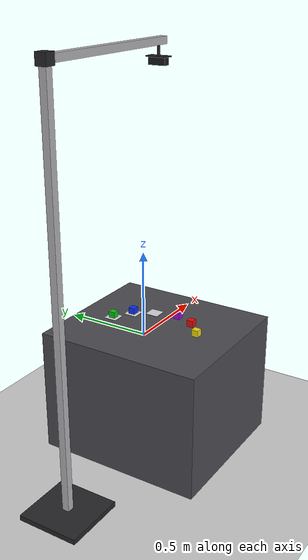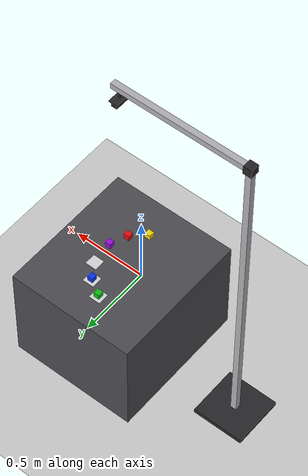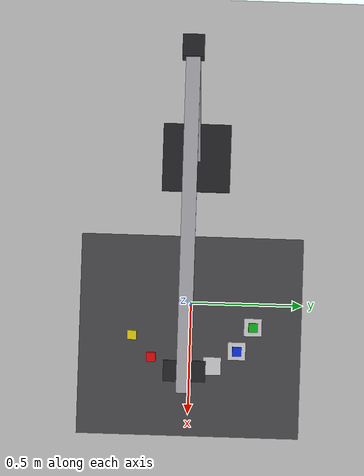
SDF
<?xml version="1.0" ?>
<sdf version="1.6">
  <world name="pick_place_world">
    <physics name="1ms" type="ignored">
      <max_step_size>0.001</max_step_size>
      <real_time_factor>1.0</real_time_factor>
    </physics>
    <plugin filename="ignition-gazebo-physics-system" name="gz::sim::systems::Physics"/>
    <plugin filename="ignition-gazebo-user-commands-system" name="gz::sim::systems::UserCommands"/>
    <plugin filename="ignition-gazebo-scene-broadcaster-system" name="gz::sim::systems::SceneBroadcaster"/>
    <!-- Bat buoc cho camera: khong co plugin nay thi sensor khong render va khong phat anh -->
    <plugin filename="ignition-gazebo-sensors-system" name="gz::sim::systems::Sensors">
      <render_engine>ogre2</render_engine>
    </plugin>

    <gui fullscreen="0">
      <camera name="user_camera">
        <pose>1.3 -0.9 0.9 0 0.45 2.55</pose>
      </camera>
    </gui>

    <!-- Tat bong do: bong cua canh tay tren khoi lam lech phan doan mau cua camera -->
    <light type="directional" name="sun">
      <cast_shadows>false</cast_shadows>
      <pose>0 0 10 0 0 0</pose>
      <diffuse>0.8 0.8 0.8 1</diffuse>
      <specular>0.2 0.2 0.2 1</specular>
      <direction>-0.5 0.1 -0.9</direction>
    </light>

    <model name="ground_plane">
      <static>true</static>
      <pose>0 0 -0.75 0 0 0</pose>
      <link name="link">
        <collision name="collision">
          <geometry><plane><normal>0 0 1</normal><size>20 20</size></plane></geometry>
        </collision>
        <visual name="visual">
          <geometry><plane><normal>0 0 1</normal><size>20 20</size></plane></geometry>
          <material>
            <ambient>0.8 0.8 0.8 1</ambient>
            <diffuse>0.8 0.8 0.8 1</diffuse>
          </material>
        </visual>
      </link>
    </model>

    <!-- Ban thao tac: 0.90 x 1.00 x 0.75 m, mat tren o z = 0 -->
    <model name="table">
      <static>true</static>
      <pose>0.15 0 -0.375 0 0 0</pose>
      <link name="link">
        <collision name="collision">
          <geometry><box><size>0.90 1.00 0.75</size></box></geometry>
        </collision>
        <visual name="visual">
          <geometry><box><size>0.90 1.00 0.75</size></box></geometry>
          <material>
            <ambient>0.30 0.30 0.32 1</ambient>
            <diffuse>0.30 0.30 0.32 1</diffuse>
          </material>
        </visual>
      </link>
    </model>

    <model name="overhead_camera">
      <static>true</static>
      <pose>0.15 0 1.5 0 1.5708 3.14159</pose>
      <link name="link">
        <visual name="visual">
          <geometry><box><size>0.04 0.10 0.04</size></box></geometry>
          <material>
            <ambient>0.1 0.1 0.1 1</ambient>
            <diffuse>0.1 0.1 0.1 1</diffuse>
          </material>
        </visual>
        <sensor name="overhead_camera" type="camera">
          <always_on>1</always_on>
          <update_rate>10</update_rate>
          <visualize>false</visualize>
          <topic>camera/image</topic>
          <camera>
            <horizontal_fov>0.70</horizontal_fov>
            <image>
              <width>640</width>
              <height>480</height>
              <format>R8G8B8</format>
            </image>
            <clip>
              <near>0.1</near>
              <far>5.0</far>
            </clip>
          </camera>
        </sensor>
      </link>
    </model>

    <model name="camera_stand">
      <static>true</static>
      <pose>0 0 0 0 0 0</pose>
      <link name="link">
        <!-- De: tam thep 0.36 x 0.36 x 0.03 tren san (z = -0.75) -->
        <collision name="base_collision">
          <pose>-0.75 0 -0.735 0 0 0</pose>
          <geometry><box><size>0.36 0.36 0.03</size></box></geometry>
        </collision>
        <visual name="base_visual">
          <pose>-0.75 0 -0.735 0 0 0</pose>
          <geometry><box><size>0.36 0.36 0.03</size></box></geometry>
          <material>
            <ambient>0.15 0.15 0.16 1</ambient>
            <diffuse>0.15 0.15 0.16 1</diffuse>
          </material>
        </visual>
        <!-- Cot dung: z = -0.72 .. 1.62 -->
        <collision name="pole_collision">
          <pose>-0.75 0 0.45 0 0 0</pose>
          <geometry><box><size>0.04 0.04 2.34</size></box></geometry>
        </collision>
        <visual name="pole_visual">
          <pose>-0.75 0 0.45 0 0 0</pose>
          <geometry><box><size>0.04 0.04 2.34</size></box></geometry>
          <material>
            <ambient>0.70 0.70 0.72 1</ambient>
            <diffuse>0.70 0.70 0.72 1</diffuse>
            <specular>0.5 0.5 0.5 1</specular>
          </material>
        </visual>
        <!-- Khop goc noi cot dung va tay ngang -->
        <visual name="corner_visual">
          <pose>-0.75 0 1.60 0 0 0</pose>
          <geometry><box><size>0.06 0.06 0.06</size></box></geometry>
          <material>
            <ambient>0.15 0.15 0.16 1</ambient>
            <diffuse>0.15 0.15 0.16 1</diffuse>
          </material>
        </visual>
        <!-- Tay ngang: x = -0.75 .. 0.20, z = 1.58 .. 1.62 -->
        <visual name="arm_visual">
          <pose>-0.275 0 1.60 0 0 0</pose>
          <geometry><box><size>0.95 0.04 0.04</size></box></geometry>
          <material>
            <ambient>0.70 0.70 0.72 1</ambient>
            <diffuse>0.70 0.70 0.72 1</diffuse>
            <specular>0.5 0.5 0.5 1</specular>
          </material>
        </visual>
        <!-- Thanh treo tu tay ngang xuong mat tren camera (z = 1.52 .. 1.58) -->
        <visual name="hanger_visual">
          <pose>0.15 0 1.55 0 0 0</pose>
          <geometry><cylinder><radius>0.008</radius><length>0.06</length></cylinder></geometry>
          <material>
            <ambient>0.15 0.15 0.16 1</ambient>
            <diffuse>0.15 0.15 0.16 1</diffuse>
          </material>
        </visual>
        <!-- Tam kep om mat tren camera -->
        <visual name="clamp_visual">
          <pose>0.15 0 1.523 0 0 0</pose>
          <geometry><box><size>0.06 0.12 0.006</size></box></geometry>
          <material>
            <ambient>0.15 0.15 0.16 1</ambient>
            <diffuse>0.15 0.15 0.16 1</diffuse>
          </material>
        </visual>
      </link>
    </model>

    <!-- Vung dat vat: tam phang mong mau xam sang, chi hien thi -->
    <model name="zone_a">
      <static>true</static>
      <pose>0.282 0.103 0.001 0 0 0</pose>
      <link name="link">
        <visual name="visual">
          <geometry><box><size>0.08 0.08 0.002</size></box></geometry>
          <material>
            <ambient>0.85 0.85 0.85 1</ambient>
            <diffuse>0.85 0.85 0.85 1</diffuse>
          </material>
        </visual>
      </link>
    </model>

    <model name="zone_b">
      <static>true</static>
      <pose>0.212 0.212 0.001 0 0 0</pose>
      <link name="link">
        <visual name="visual">
          <geometry><box><size>0.08 0.08 0.002</size></box></geometry>
          <material>
            <ambient>0.85 0.85 0.85 1</ambient>
            <diffuse>0.85 0.85 0.85 1</diffuse>
          </material>
        </visual>
      </link>
    </model>

    <model name="zone_c">
      <static>true</static>
      <pose>0.103 0.282 0.001 0 0 0</pose>
      <link name="link">
        <visual name="visual">
          <geometry><box><size>0.08 0.08 0.002</size></box></geometry>
          <material>
            <ambient>0.85 0.85 0.85 1</ambient>
            <diffuse>0.85 0.85 0.85 1</diffuse>
          </material>
        </visual>
      </link>
    </model>

    <model name="red_cube">
      <pose>0.246 -0.172 0.020 0 0 0</pose>
      <link name="link">
        <inertial>
          <mass>0.05</mass>
          <inertia>
            <ixx>1.33e-5</ixx><iyy>1.33e-5</iyy><izz>1.33e-5</izz>
            <ixy>0</ixy><ixz>0</ixz><iyz>0</iyz>
          </inertia>
        </inertial>
        <collision name="collision">
          <geometry><box><size>0.04 0.04 0.04</size></box></geometry>
          <surface>
            <friction><ode><mu>1.0</mu><mu2>1.0</mu2></ode></friction>
          </surface>
        </collision>
        <visual name="visual">
          <geometry><box><size>0.04 0.04 0.04</size></box></geometry>
          <material>
            <ambient>0.9 0.05 0.05 1</ambient>
            <diffuse>0.9 0.05 0.05 1</diffuse>
          </material>
        </visual>
      </link>
    </model>

    <model name="yellow_cube">
      <pose>0.150 -0.260 0.020 0 0 0</pose>
      <link name="link">
        <inertial>
          <mass>0.05</mass>
          <inertia>
            <ixx>1.33e-5</ixx><iyy>1.33e-5</iyy><izz>1.33e-5</izz>
            <ixy>0</ixy><ixz>0</ixz><iyz>0</iyz>
          </inertia>
        </inertial>
        <collision name="collision">
          <geometry><box><size>0.04 0.04 0.04</size></box></geometry>
          <surface>
            <friction><ode><mu>1.0</mu><mu2>1.0</mu2></ode></friction>
          </surface>
        </collision>
        <visual name="visual">
          <geometry><box><size>0.04 0.04 0.04</size></box></geometry>
          <material>
            <ambient>0.95 0.85 0.05 1</ambient>
            <diffuse>0.95 0.85 0.05 1</diffuse>
          </material>
        </visual>
      </link>
    </model>

    <model name="blue_cube">
      <pose>0.212 0.212 0.020 0 0 0</pose>
      <link name="link">
        <inertial>
          <mass>0.05</mass>
          <inertia>
            <ixx>1.33e-5</ixx><iyy>1.33e-5</iyy><izz>1.33e-5</izz>
            <ixy>0</ixy><ixz>0</ixz><iyz>0</iyz>
          </inertia>
        </inertial>
        <collision name="collision">
          <geometry><box><size>0.04 0.04 0.04</size></box></geometry>
          <surface>
            <friction><ode><mu>1.0</mu><mu2>1.0</mu2></ode></friction>
          </surface>
        </collision>
        <visual name="visual">
          <geometry><box><size>0.04 0.04 0.04</size></box></geometry>
          <material>
            <ambient>0.05 0.2 0.95 1</ambient>
            <diffuse>0.05 0.2 0.95 1</diffuse>
          </material>
        </visual>
      </link>
    </model>

    <model name="green_cube">
      <pose>0.103 0.282 0.020 0 0 0</pose>
      <link name="link">
        <inertial>
          <mass>0.05</mass>
          <inertia>
            <ixx>1.33e-5</ixx><iyy>1.33e-5</iyy><izz>1.33e-5</izz>
            <ixy>0</ixy><ixz>0</ixz><iyz>0</iyz>
          </inertia>
        </inertial>
        <collision name="collision">
          <geometry><box><size>0.04 0.04 0.04</size></box></geometry>
          <surface>
            <friction><ode><mu>1.0</mu><mu2>1.0</mu2></ode></friction>
          </surface>
        </collision>
        <visual name="visual">
          <geometry><box><size>0.04 0.04 0.04</size></box></geometry>
          <material>
            <ambient>0.05 0.75 0.1 1</ambient>
            <diffuse>0.05 0.75 0.1 1</diffuse>
          </material>
        </visual>
      </link>
    </model>

    <model name="purple_cube">
      <pose>0.295 -0.052 0.020 0 0 0</pose>
      <link name="link">
        <inertial>
          <mass>0.05</mass>
          <inertia>
            <ixx>1.33e-5</ixx><iyy>1.33e-5</iyy><izz>1.33e-5</izz>
            <ixy>0</ixy><ixz>0</ixz><iyz>0</iyz>
          </inertia>
        </inertial>
        <collision name="collision">
          <geometry><box><size>0.04 0.04 0.04</size></box></geometry>
          <surface>
            <friction><ode><mu>1.0</mu><mu2>1.0</mu2></ode></friction>
          </surface>
        </collision>
        <visual name="visual">
          <geometry><box><size>0.04 0.04 0.04</size></box></geometry>
          <material>
            <ambient>0.6 0.05 0.85 1</ambient>
            <diffuse>0.6 0.05 0.85 1</diffuse>
          </material>
        </visual>
      </link>
    </model>
  </world>
</sdf>
